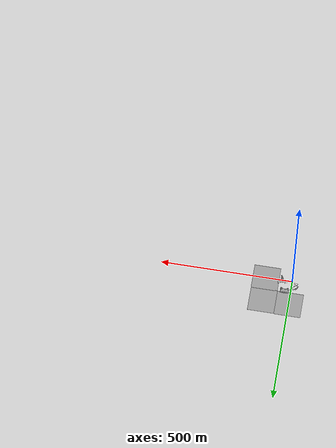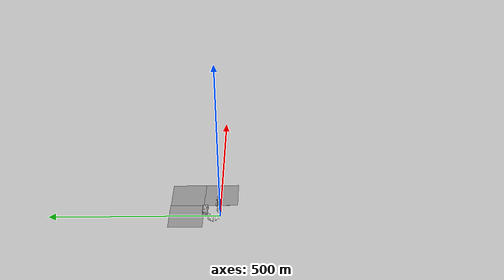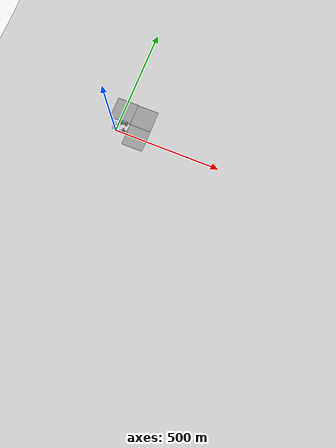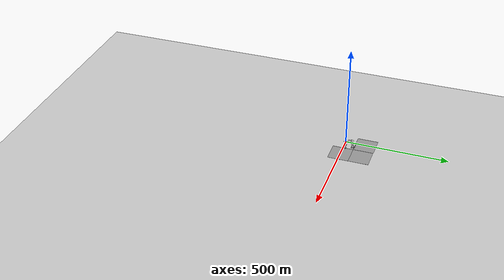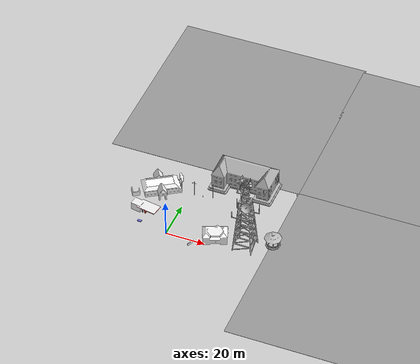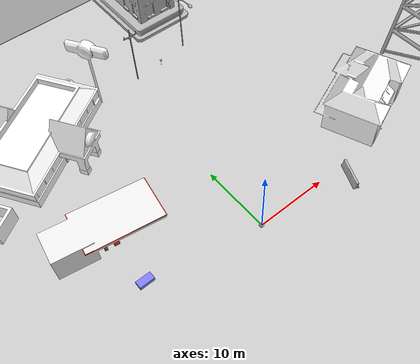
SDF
<sdf version="1.6">
 <world name="default">
  <light name="sun" type="directional">
   <pose>0 0 10 0 -0 0</pose>
   <diffuse>0.8 0.8 0.8 1</diffuse>
   <specular>0.2 0.2 0.2 1</specular>
   <attenuation>
    <range>1000</range>
    <constant>0.9</constant>
    <linear>0.01</linear>
    <quadratic>0.001</quadratic>
   </attenuation>
   <direction>-0.5 0.1 -0.9</direction>
   <spot><inner_angle>0</inner_angle><outer_angle>0</outer_angle><falloff>0</falloff></spot>
  </light>
  <model name="ground_plane">
   <static>1</static>
   <link name="link">
    <collision name="collision">
     <geometry><plane><normal>0 0 1</normal><size>100 100</size></plane></geometry>
     <surface>
      <contact><collide_bitmask>65535</collide_bitmask></contact>
      <friction><ode><mu>100</mu><mu2>50</mu2></ode></friction>
     </surface>
    </collision>
    <visual name="visual">
     <cast_shadows>0</cast_shadows>
     <geometry><plane><normal>0 0 1</normal><size>100 100</size></plane></geometry>
     <material>
      <script><uri>file://media/materials/scripts/gazebo.material</uri><name>Gazebo/Grey</name></script>
     </material>
    </visual>
   </link>
  </model>
  <model name="mobile_warehouse_robot">
   <static>false</static>
   <link name="chassis">
    <pose>0 0 .04 0 0 0</pose>
    <collision name="collision"><geometry><box><size>.4 .2 .1</size></box></geometry></collision>
    <visual name="visual">
     <pose>0 0 0.02 0 0 0</pose>
     <geometry>
      <mesh><uri>model://warehouse_robot/meshes/robot.dae</uri><scale>0.9 0.5 0.5</scale></mesh>
     </geometry>
    </visual>
    <collision name="caster_collision">
     <pose>-0.19 0 0 0 0 0</pose>
     <geometry><sphere><radius>.06</radius></sphere></geometry>
     <surface><friction><ode><mu>0</mu><mu2>0</mu2><slip1>1.0</slip1><slip2>1.0</slip2></ode></friction></surface>
    </collision>
    <visual name="caster_visual">
     <pose>-0.19 0 0 0 0 0</pose>
     <geometry><sphere><radius>.06</radius></sphere></geometry>
    </visual>
   </link>
   <link name="left_wheel">
    <pose>0.12 0.19 0.1 0 1.5707 1.5707</pose>
    <collision name="collision">
     <geometry><cylinder><radius>.12</radius><length>.08</length></cylinder></geometry>
    </collision>
    <visual name="visual">
     <geometry><cylinder><radius>.12</radius><length>.08</length></cylinder></geometry>
    </visual>
   </link>
   <link name="right_wheel">
    <pose>0.12 -0.19 0.1 0 1.5707 1.5707</pose>
    <collision name="collision">
     <geometry><cylinder><radius>.12</radius><length>.08</length></cylinder></geometry>
    </collision>
    <visual name="visual">
     <geometry><cylinder><radius>.12</radius><length>.08</length></cylinder></geometry>
    </visual>
   </link>
   <link name="laser_link">
    <inertial><mass>0.1</mass></inertial>
    <pose>0.15 0 0.30 0 0 0</pose>
    <visual name="visual"><geometry><mesh><uri>model://hokuyo/meshes/hokuyo.dae</uri></mesh></geometry></visual>
    <collision name="collision-base">
     <pose>0 0 -0.0145 0 0 0</pose>
     <geometry><box><size>0.05 0.05 0.041</size></box></geometry>
    </collision>
    <collision name="collision-top">
     <pose>0 0 0.0205 0 0 0</pose>
     <geometry><cylinder><radius>0.021</radius><length>0.029</length></cylinder></geometry>
    </collision>
    <sensor type="ray" name="VLP16">
     <update_rate>10</update_rate>
     <visualize>true</visualize>
     <always_on>true</always_on>
     <ray>
      <scan>
       <horizontal>
        <samples>360</samples>
        <resolution>1</resolution>
        <min_angle>-3.1415</min_angle>
        <max_angle>3.1415</max_angle>
       </horizontal>
       <vertical>
        <samples>16</samples>
        <resolution>1</resolution>
        <min_angle>-0.2618</min_angle>
        <max_angle>0.2618</max_angle>
       </vertical>
      </scan>
      <range><min>1.0</min><max>14.0</max><resolution>0.001</resolution></range>
      <noise><type>gaussian</type><mean>0.0</mean><stddev>0.0</stddev></noise>
     </ray>
     <plugin name="gazebo_ros_laser_controller" filename="libgazebo_ros_velodyne_laser.so">
      <topicName>lidar_points</topicName>
      <frameName>lidar_link</frameName>
      <min_range>1.0</min_range>
      <max_range>14.0</max_range>
      <gaussianNoise>0.008</gaussianNoise>
     </plugin>
    </sensor>
   </link>
   <joint type="revolute" name="left_wheel_hinge">
    <pose>0 0 -0.03 0 0 0</pose>
    <child>left_wheel</child>
    <parent>chassis</parent>
    <axis><xyz>0 1 0</xyz></axis>
   </joint>
   <joint type="revolute" name="right_wheel_hinge">
    <pose>0 0 0.03 0 0 0</pose>
    <child>right_wheel</child>
    <parent>chassis</parent>
    <axis><xyz>0 1 0</xyz></axis>
   </joint>
   <joint type="fixed" name="laser_joint"><child>laser_link</child><parent>chassis</parent></joint>
   <plugin name="diff_drive" filename="libgazebo_ros_diff_drive.so">
    <ros>
     <namespace>/demo</namespace>
     <remapping>cmd_vel:=cmd_vel</remapping>
     <remapping>odom:=odom</remapping>
    </ros>
    <left_joint>left_wheel_hinge</left_joint>
    <right_joint>right_wheel_hinge</right_joint>
    <wheel_separation>0.26</wheel_separation>
    <wheel_diameter>0.2</wheel_diameter>
    <max_wheel_torque>20</max_wheel_torque>
    <max_wheel_acceleration>1.0</max_wheel_acceleration>
    <publish_odom>true</publish_odom>
    <publish_odom_tf>true</publish_odom_tf>
    <publish_wheel_tf>true</publish_wheel_tf>
    <odometry_frame>odom</odometry_frame>
    <robot_base_frame>chassis</robot_base_frame>
   </plugin>
  </model>
  <model name="House 2">
   <static>1</static>
   <link name="link">
    <collision name="collision">
     <geometry><mesh><uri>model://house_2/meshes/house_2.dae</uri><scale>1.5 1.5 1.5</scale></mesh></geometry>
    </collision>
    <visual name="visual">
     <geometry><mesh><uri>model://house_2/meshes/house_2.dae</uri><scale>1.5 1.5 1.5</scale></mesh></geometry>
     <material>
      <script>
       <uri>model://house_2/materials/scripts</uri>
       <uri>model://house_2/materials/textures</uri>
       <uri>model://house_1/materials/textures</uri>
       <name>House_2/Diffuse</name>
      </script>
      <shader type="normal_map_tangent_space">
       <normal_map>model://house_1/materials/textures/House_1_Normal.png</normal_map>
      </shader>
     </material>
    </visual>
   </link>
   <pose>22.4925 4.83393 0 0 -0 0.380911</pose>
  </model>
  <model name="jersey_barrier">
   <static>1</static>
   <link name="link">
    <visual name="visual">
     <geometry><mesh><uri>model://jersey_barrier/meshes/jersey_barrier.dae</uri></mesh></geometry>
    </visual>
    <collision name="upright">
     <pose>0 0 0.5715 0 -0 0</pose>
     <geometry><box><size>4.06542 0.3063 1.143</size></box></geometry>
    </collision>
    <collision name="base">
     <pose>0 0 0.032258 0 -0 0</pose>
     <geometry><box><size>4.06542 0.8107 0.064516</size></box></geometry>
    </collision>
    <collision name="base2">
     <pose>0 0 0.1 0 -0 0</pose>
     <geometry><box><size>4.06542 0.65 0.1</size></box></geometry>
    </collision>
    <collision name="base3">
     <pose>0 0 0.2 0 -0 0</pose>
     <geometry><box><size>4.06542 0.5 0.1</size></box></geometry>
    </collision>
    <collision name="left-angle">
     <pose>0 -0.224 0.2401 0.9 -0 0</pose>
     <geometry><box><size>4.06542 0.5 0.064516</size></box></geometry>
    </collision>
    <collision name="right-angle">
     <pose>0 0.224 0.2401 -0.9 0 0</pose>
     <geometry><box><size>4.06542 0.5 0.064516</size></box></geometry>
    </collision>
   </link>
   <pose>13.5621 -1.95096 0 0 -0 1.17116</pose>
  </model>
  <model name="Stop Sign">
   <static>1</static>
   <link name="link">
    <collision name="collision">
     <geometry><mesh><uri>model://stop_sign/meshes/stop_sign.dae</uri></mesh></geometry>
    </collision>
    <visual name="visual">
     <geometry><mesh><uri>model://stop_sign/meshes/stop_sign.dae</uri></mesh></geometry>
     <material>
      <script>
       <uri>model://stop_sign/materials/scripts</uri>
       <uri>model://stop_sign/materials/textures</uri>
       <name>StopSign/Diffuse</name>
      </script>
     </material>
    </visual>
   </link>
   <pose>1262.08 -958.397 -7.40689 0 -0 0</pose>
  </model>
  <model name="Mailbox">
   <link name="link">
    <collision name="collision">
     <geometry><mesh><uri>model://mailbox/meshes/mailbox.dae</uri></mesh></geometry>
    </collision>
    <visual name="visual">
     <geometry><mesh><uri>model://mailbox/meshes/mailbox.dae</uri></mesh></geometry>
     <material>
      <script>
       <uri>model://mailbox/materials/scripts</uri>
       <uri>model://mailbox/materials/textures</uri>
       <name>Mailbox/Diffuse</name>
      </script>
     </material>
    </visual>
    <inertial>
     <inertia><ixx>1</ixx><ixy>0</ixy><ixz>0</ixz><iyy>1</iyy><iyz>0</iyz><izz>1</izz></inertia>
     <mass>1</mass>
    </inertial>
   </link>
   <pose>6.96462 30.24 -9e-06 4e-06 -7e-06 -2.08263</pose>
  </model>
  <model name="Lamp Post">
   <static>1</static>
   <link name="link">
    <collision name="collision">
     <geometry><mesh><uri>model://lamp_post/meshes/lamp_post.dae</uri><scale>3 3 3</scale></mesh></geometry>
    </collision>
    <visual name="visual">
     <geometry><mesh><uri>model://lamp_post/meshes/lamp_post.dae</uri><scale>3 3 3</scale></mesh></geometry>
    </visual>
   </link>
   <pose>11.8722 31.358 0 0 -0 0</pose>
  </model>
  <model name="Gas Station">
   <static>1</static>
   <link name="link">
    <collision name="collision">
     <geometry><mesh><uri>model://gas_station/meshes/gas_station.dae</uri></mesh></geometry>
    </collision>
    <visual name="visual">
     <geometry><mesh><uri>model://gas_station/meshes/gas_station.dae</uri></mesh></geometry>
     <material>
      <script>
       <uri>model://gas_station/materials/scripts</uri>
       <uri>model://gas_station/materials/textures</uri>
       <name>GasStation/Diffuse</name>
      </script>
      <shader type="normal_map_tangent_space"><normal_map>GasStation_Normal.png</normal_map></shader>
     </material>
    </visual>
   </link>
   <pose>-15.8479 10.8664 0 0 0 -0.162919</pose>
  </model>
  <model name="Fast Food">
   <static>1</static>
   <link name="link">
    <pose>0 0 3.15931 0 -0 0</pose>
    <collision name="collision">
     <geometry><mesh><scale>3 3 2</scale><uri>model://fast_food/meshes/fast_food.dae</uri></mesh></geometry>
    </collision>
    <visual name="visual">
     <geometry><mesh><scale>3 3 2</scale><uri>model://fast_food/meshes/fast_food.dae</uri></mesh></geometry>
     <material>
      <script>
       <uri>model://fast_food/materials/scripts</uri>
       <uri>model://fast_food/materials/textures</uri>
       <name>FastFood/Diffuse</name>
      </script>
      <shader type="normal_map_tangent_space"><normal_map>FastFood_Normal.png</normal_map></shader>
     </material>
    </visual>
   </link>
   <pose>-14.3928 27.2426 0 0 -0 0.569642</pose>
  </model>
  <gravity>0 0 -9.8</gravity>
  <magnetic_field>6e-06 2.3e-05 -4.2e-05</magnetic_field>
  <atmosphere type="adiabatic"/>
  <physics type="ode">
   <max_step_size>0.001</max_step_size>
   <real_time_factor>1</real_time_factor>
   <real_time_update_rate>1000</real_time_update_rate>
  </physics>
  <scene><ambient>0.4 0.4 0.4 1</ambient><background>0.7 0.7 0.7 1</background><shadows>1</shadows></scene>
  <audio><device>default</device></audio>
  <spherical_coordinates>
   <surface_model>EARTH_WGS84</surface_model>
   <latitude_deg>0</latitude_deg>
   <longitude_deg>0</longitude_deg>
   <elevation>0</elevation>
   <heading_deg>0</heading_deg>
  </spherical_coordinates>
  <model name="school">
   <static>1</static>
   <link name="link">
    <collision name="collision">
     <geometry><mesh><uri>model://school/meshes/school.dae</uri></mesh></geometry>
    </collision>
    <visual name="visual"><geometry><mesh><uri>model://school/meshes/school.dae</uri></mesh></geometry></visual>
   </link>
   <pose>23.5758 47.1153 0 0 -0 0</pose>
  </model>
  <model name="telephone_pole">
   <static>1</static>
   <link name="link">
    <collision name="collision_pole">
     <pose>0 0 4.572 0 -0 0</pose>
     <geometry><cylinder><radius>0.0779475</radius><length>9.144</length></cylinder></geometry>
    </collision>
    <collision name="collision_cross">
     <pose>0 -0.098806 8.04836 0 -0 0</pose>
     <geometry><box><size>2.11606 0.041763 0.177806</size></box></geometry>
    </collision>
    <visual name="visual">
     <geometry><mesh><uri>model://telephone_pole/meshes/telephone_pole.dae</uri></mesh></geometry>
    </visual>
   </link>
   <pose>2.61397 30.0372 0 0 -0 0</pose>
  </model>
  <model name="radio_tower">
   <static>1</static>
   <link name="link">
    <collision name="collision">
     <geometry><mesh><uri>model://radio_tower/meshes/radio_tower.dae</uri></mesh></geometry>
    </collision>
    <visual name="visual">
     <geometry><mesh><uri>model://radio_tower/meshes/radio_tower.dae</uri></mesh></geometry>
    </visual>
   </link>
   <pose>38.6701 5.90232 0 0 -0 0</pose>
  </model>
  <model name="ground_plane_0">
   <static>1</static>
   <link name="link">
    <collision name="collision">
     <geometry><plane><normal>0 0 1</normal><size>100 100</size></plane></geometry>
     <surface>
      <contact><collide_bitmask>65535</collide_bitmask></contact>
      <friction><ode><mu>100</mu><mu2>50</mu2></ode></friction>
     </surface>
    </collision>
    <visual name="visual">
     <cast_shadows>0</cast_shadows>
     <geometry><plane><normal>0 0 1</normal><size>100 100</size></plane></geometry>
     <material>
      <script><uri>file://media/materials/scripts/gazebo.material</uri><name>Gazebo/Grey</name></script>
     </material>
    </visual>
   </link>
   <pose>-0.019574 99.5796 0 0 -0 0</pose>
  </model>
  <model name="ground_plane_1">
   <static>1</static>
   <link name="link">
    <collision name="collision">
     <geometry><plane><normal>0 0 1</normal><size>100 100</size></plane></geometry>
     <surface>
      <contact><collide_bitmask>65535</collide_bitmask></contact>
      <friction><ode><mu>100</mu><mu2>50</mu2></ode></friction>
     </surface>
    </collision>
    <visual name="visual">
     <cast_shadows>0</cast_shadows>
     <geometry><plane><normal>0 0 1</normal><size>100 100</size></plane></geometry>
     <material>
      <script><uri>file://media/materials/scripts/gazebo.material</uri><name>Gazebo/Grey</name></script>
     </material>
    </visual>
   </link>
   <pose>99.941 0.034553 0 0 -0 0</pose>
  </model>
  <model name="ground_plane_2">
   <static>1</static>
   <link name="link">
    <collision name="collision">
     <geometry><plane><normal>0 0 1</normal><size>100 100</size></plane></geometry>
     <surface>
      <contact><collide_bitmask>65535</collide_bitmask></contact>
      <friction><ode><mu>100</mu><mu2>50</mu2></ode></friction>
     </surface>
    </collision>
    <visual name="visual">
     <cast_shadows>0</cast_shadows>
     <geometry><plane><normal>0 0 1</normal><size>100 100</size></plane></geometry>
     <material>
      <script><uri>file://media/materials/scripts/gazebo.material</uri><name>Gazebo/Grey</name></script>
     </material>
    </visual>
   </link>
   <pose>99.1867 98.1749 0 0 -0 0</pose>
  </model>
  <model name="gazebo">
   <static>1</static>
   <link name="link">
    <collision name="collision">
     <geometry><mesh><scale>3 3 2.5</scale><uri>model://gazebo/meshes/gazebo.dae</uri></mesh></geometry>
    </collision>
    <visual name="visual">
     <geometry><mesh><scale>3 3 2.5</scale><uri>model://gazebo/meshes/gazebo.dae</uri></mesh></geometry>
    </visual>
   </link>
   <pose>50.8045 11.6873 0 0 -0 0</pose>
  </model>
  <model name="simulated_vehicle">
   <pose>-15 3 0.325 0 0 0.0</pose>
   <link name="chassis">
    <pose>-0.151427 -0 0.175 0 -0 0</pose>
    <inertial>
     <mass>1.14395</mass>
     <inertia>
      <ixx>0.126164</ixx>
      <ixy>0</ixy>
      <ixz>0</ixz>
      <iyy>0.416519</iyy>
      <iyz>0</iyz>
      <izz>0.481014</izz>
     </inertia>
    </inertial>
    <visual name="visual">
     <geometry><box><size>2.01142 1 0.568726</size></box></geometry>
     <material>
      <ambient>0.5 0.5 1.0 1</ambient>
      <diffuse>0.5 0.5 1.0 1</diffuse>
      <specular>0.0 0.0 1.0 1</specular>
     </material>
    </visual>
    <collision name="collision"><geometry><box><size>2.01142 1 0.568726</size></box></geometry></collision>
   </link>
  </model>
 </world>
</sdf>
